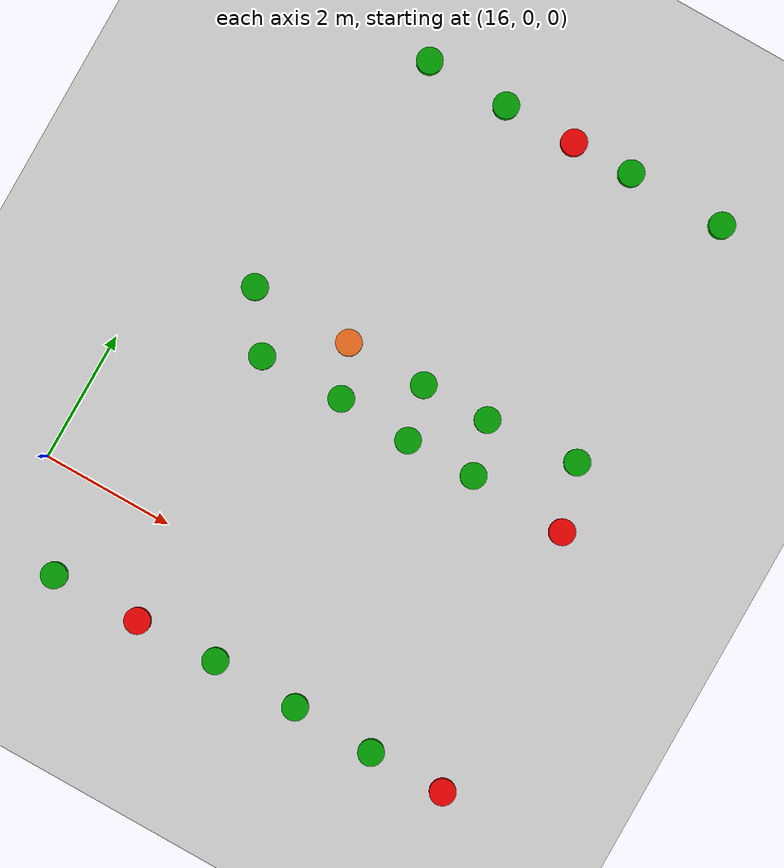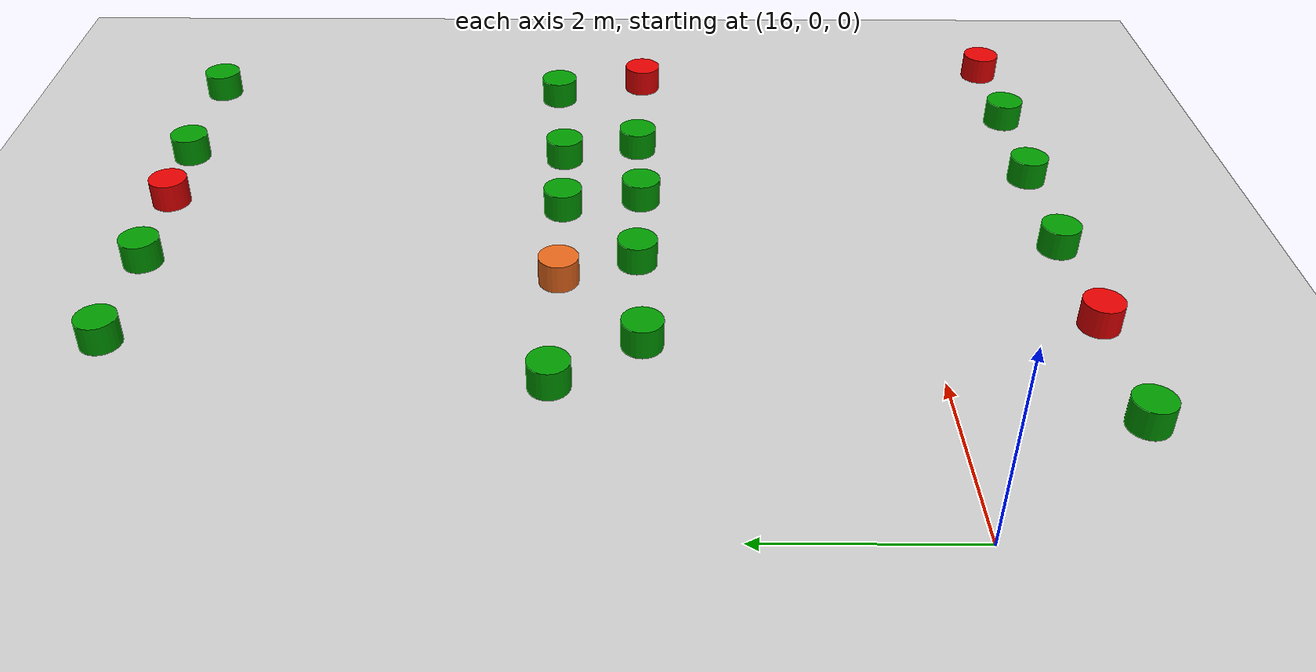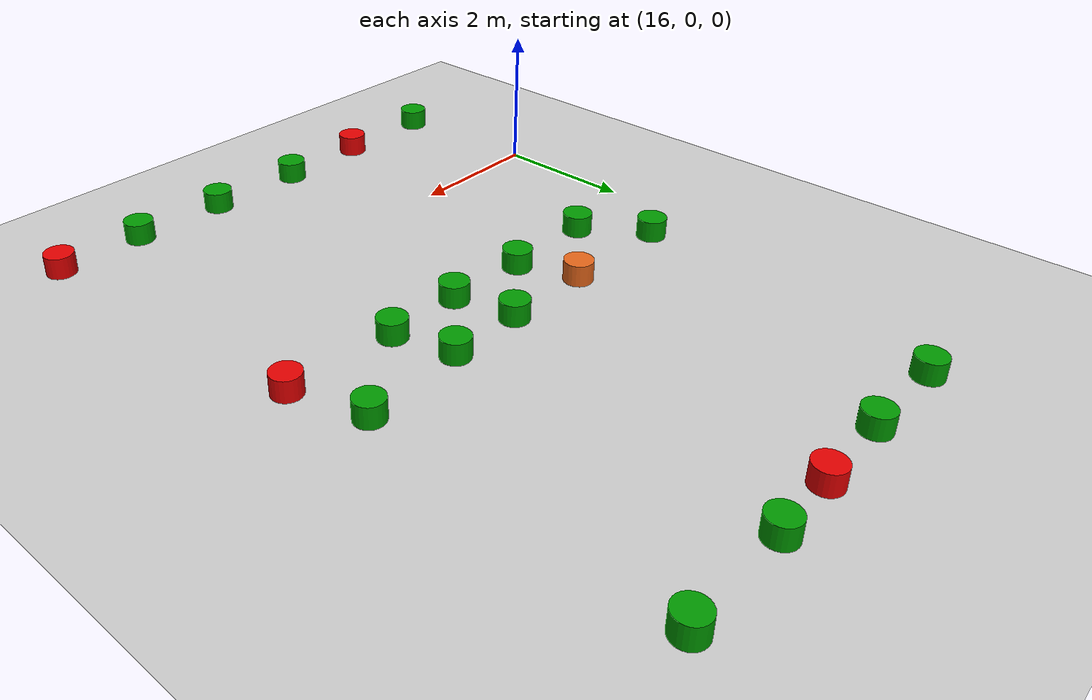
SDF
<sdf version="1.7">
 <world name="default">
  <model name="ground_plane">
   <static>1</static>
   <link name="link">
    <collision name="collision">
     <geometry><plane><normal>0 0 1</normal><size>100 100</size></plane></geometry>
     <surface><friction><ode><mu>100</mu><mu2>50</mu2></ode></friction></surface>
    </collision>
    <visual name="visual">
     <cast_shadows>0</cast_shadows>
     <geometry><plane><normal>0 0 1</normal><size>100 100</size></plane></geometry>
     <material>
      <script><uri>file://media/materials/scripts/gazebo.material</uri><name>Gazebo/Grey</name></script>
     </material>
    </visual>
   </link>
  </model>
  <model name="Test_pot_green_clone_4">
   <link name="link_0">
    <inertial>
     <mass>0.044841</mass>
     <inertia>
      <ixx>0.00074807</ixx>
      <ixy>0</ixy>
      <ixz>0</ixz>
      <iyy>0.00074807</iyy>
      <iyz>0</iyz>
      <izz>0.00086495</izz>
     </inertia>
    </inertial>
    <pose>3e-06 1e-06 0 0 -0 0</pose>
    <visual name="visual">
     <geometry><cylinder><radius>0.196415</radius><length>0.290612</length></cylinder></geometry>
     <material>
      <lighting>1</lighting>
      <script><uri>file://media/materials/scripts/gazebo.material</uri><name>Gazebo/Grey</name></script>
      <shader type="pixel"><normal_map>__default__</normal_map></shader>
      <diffuse>0 0.6 0 0</diffuse>
      <ambient>0.3 0.3 0.3 1</ambient>
      <specular>0.01 0.01 0.01 1</specular>
      <emissive>0 0 0 1</emissive>
     </material>
    </visual>
    <collision name="collision">
     <geometry><cylinder><radius>0.196415</radius><length>0.290612</length></cylinder></geometry>
     <surface>
      <friction>
       <ode><mu>1</mu><mu2>1</mu2><fdir1>0 0 0</fdir1><slip1>0</slip1><slip2>0</slip2></ode>
       <torsional>
        <coefficient>1</coefficient>
        <patch_radius>0</patch_radius>
        <surface_radius>0</surface_radius>
        <use_patch_radius>1</use_patch_radius>
        <ode><slip>0</slip></ode>
       </torsional>
      </friction>
      <bounce><restitution_coefficient>0</restitution_coefficient><threshold>1e+06</threshold></bounce>
      <contact>
       <collide_without_contact>0</collide_without_contact>
       <collide_without_contact_bitmask>1</collide_without_contact_bitmask>
       <collide_bitmask>1</collide_bitmask>
       <ode>
        <soft_cfm>0</soft_cfm>
        <soft_erp>0.2</soft_erp>
        <kp>1e+13</kp>
        <kd>1</kd>
        <max_vel>0.01</max_vel>
        <min_depth>0</min_depth>
       </ode>
       <bullet>
        <split_impulse>1</split_impulse>
        <split_impulse_penetration_threshold>-0.01</split_impulse_penetration_threshold>
        <soft_cfm>0</soft_cfm>
        <soft_erp>0.2</soft_erp>
        <kp>1e+13</kp>
        <kd>1</kd>
       </bullet>
      </contact>
     </surface>
    </collision>
   </link>
   <static>0</static>
   <pose>18.0132 7.68148 0.575581 0 3e-06 0.002291</pose>
  </model>
  <model name="Test_pot_green_clone_5">
   <link name="link_0">
    <inertial>
     <mass>0.044841</mass>
     <inertia>
      <ixx>0.00074807</ixx>
      <ixy>0</ixy>
      <ixz>0</ixz>
      <iyy>0.00074807</iyy>
      <iyz>0</iyz>
      <izz>0.00086495</izz>
     </inertia>
    </inertial>
    <pose>3e-06 1e-06 0 0 -0 0</pose>
    <visual name="visual">
     <geometry><cylinder><radius>0.196415</radius><length>0.290612</length></cylinder></geometry>
     <material>
      <lighting>1</lighting>
      <script><uri>file://media/materials/scripts/gazebo.material</uri><name>Gazebo/Grey</name></script>
      <shader type="pixel"><normal_map>__default__</normal_map></shader>
      <diffuse>0 0.6 0 0</diffuse>
      <ambient>0.3 0.3 0.3 1</ambient>
      <specular>0.01 0.01 0.01 1</specular>
      <emissive>0 0 0 1</emissive>
     </material>
    </visual>
    <collision name="collision">
     <geometry><cylinder><radius>0.196415</radius><length>0.290612</length></cylinder></geometry>
     <surface>
      <friction>
       <ode><mu>1</mu><mu2>1</mu2><fdir1>0 0 0</fdir1><slip1>0</slip1><slip2>0</slip2></ode>
       <torsional>
        <coefficient>1</coefficient>
        <patch_radius>0</patch_radius>
        <surface_radius>0</surface_radius>
        <use_patch_radius>1</use_patch_radius>
        <ode><slip>0</slip></ode>
       </torsional>
      </friction>
      <bounce><restitution_coefficient>0</restitution_coefficient><threshold>1e+06</threshold></bounce>
      <contact>
       <collide_without_contact>0</collide_without_contact>
       <collide_without_contact_bitmask>1</collide_without_contact_bitmask>
       <collide_bitmask>1</collide_bitmask>
       <ode>
        <soft_cfm>0</soft_cfm>
        <soft_erp>0.2</soft_erp>
        <kp>1e+13</kp>
        <kd>1</kd>
        <max_vel>0.01</max_vel>
        <min_depth>0</min_depth>
       </ode>
       <bullet>
        <split_impulse>1</split_impulse>
        <split_impulse_penetration_threshold>-0.01</split_impulse_penetration_threshold>
        <soft_cfm>0</soft_cfm>
        <soft_erp>0.2</soft_erp>
        <kp>1e+13</kp>
        <kd>1</kd>
       </bullet>
      </contact>
     </surface>
    </collision>
   </link>
   <static>0</static>
   <pose>19.2874 7.66309 0.575572 1.1e-05 -1e-06 0.001082</pose>
  </model>
  <model name="Test_pot_green_clone_6">
   <link name="link_0">
    <inertial>
     <mass>0.044841</mass>
     <inertia>
      <ixx>0.00074807</ixx>
      <ixy>0</ixy>
      <ixz>0</ixz>
      <iyy>0.00074807</iyy>
      <iyz>0</iyz>
      <izz>0.00086495</izz>
     </inertia>
    </inertial>
    <pose>3e-06 1e-06 0 0 -0 0</pose>
    <visual name="visual">
     <geometry><cylinder><radius>0.196415</radius><length>0.290612</length></cylinder></geometry>
     <material>
      <lighting>1</lighting>
      <script><uri>file://media/materials/scripts/gazebo.material</uri><name>Gazebo/Grey</name></script>
      <shader type="pixel"><normal_map>__default__</normal_map></shader>
      <diffuse>0 0.6 0 0</diffuse>
      <ambient>0.3 0.3 0.3 1</ambient>
      <specular>0.01 0.01 0.01 1</specular>
      <emissive>0 0 0 1</emissive>
     </material>
    </visual>
    <collision name="collision">
     <geometry><cylinder><radius>0.196415</radius><length>0.290612</length></cylinder></geometry>
     <surface>
      <friction>
       <ode><mu>1</mu><mu2>1</mu2><fdir1>0 0 0</fdir1><slip1>0</slip1><slip2>0</slip2></ode>
       <torsional>
        <coefficient>1</coefficient>
        <patch_radius>0</patch_radius>
        <surface_radius>0</surface_radius>
        <use_patch_radius>1</use_patch_radius>
        <ode><slip>0</slip></ode>
       </torsional>
      </friction>
      <bounce><restitution_coefficient>0</restitution_coefficient><threshold>1e+06</threshold></bounce>
      <contact>
       <collide_without_contact>0</collide_without_contact>
       <collide_without_contact_bitmask>1</collide_without_contact_bitmask>
       <collide_bitmask>1</collide_bitmask>
       <ode>
        <soft_cfm>0</soft_cfm>
        <soft_erp>0.2</soft_erp>
        <kp>1e+13</kp>
        <kd>1</kd>
        <max_vel>0.01</max_vel>
        <min_depth>0</min_depth>
       </ode>
       <bullet>
        <split_impulse>1</split_impulse>
        <split_impulse_penetration_threshold>-0.01</split_impulse_penetration_threshold>
        <soft_cfm>0</soft_cfm>
        <soft_erp>0.2</soft_erp>
        <kp>1e+13</kp>
        <kd>1</kd>
       </bullet>
      </contact>
     </surface>
    </collision>
   </link>
   <static>0</static>
   <pose>21.3341 7.70057 0.57559 -3.4e-05 -2e-06 0.000809</pose>
  </model>
  <model name="Test_pot_green_clone_7">
   <link name="link_0">
    <inertial>
     <mass>0.044841</mass>
     <inertia>
      <ixx>0.00074807</ixx>
      <ixy>0</ixy>
      <ixz>0</ixz>
      <iyy>0.00074807</iyy>
      <iyz>0</iyz>
      <izz>0.00086495</izz>
     </inertia>
    </inertial>
    <pose>3e-06 1e-06 0 0 -0 0</pose>
    <visual name="visual">
     <geometry><cylinder><radius>0.196415</radius><length>0.290612</length></cylinder></geometry>
     <material>
      <lighting>1</lighting>
      <script><uri>file://media/materials/scripts/gazebo.material</uri><name>Gazebo/Grey</name></script>
      <shader type="pixel"><normal_map>__default__</normal_map></shader>
      <diffuse>0 0.6 0 0</diffuse>
      <ambient>0.3 0.3 0.3 1</ambient>
      <specular>0.01 0.01 0.01 1</specular>
      <emissive>0 0 0 1</emissive>
     </material>
    </visual>
    <collision name="collision">
     <geometry><cylinder><radius>0.196415</radius><length>0.290612</length></cylinder></geometry>
     <surface>
      <friction>
       <ode><mu>1</mu><mu2>1</mu2><fdir1>0 0 0</fdir1><slip1>0</slip1><slip2>0</slip2></ode>
       <torsional>
        <coefficient>1</coefficient>
        <patch_radius>0</patch_radius>
        <surface_radius>0</surface_radius>
        <use_patch_radius>1</use_patch_radius>
        <ode><slip>0</slip></ode>
       </torsional>
      </friction>
      <bounce><restitution_coefficient>0</restitution_coefficient><threshold>1e+06</threshold></bounce>
      <contact>
       <collide_without_contact>0</collide_without_contact>
       <collide_without_contact_bitmask>1</collide_without_contact_bitmask>
       <collide_bitmask>1</collide_bitmask>
       <ode>
        <soft_cfm>0</soft_cfm>
        <soft_erp>0.2</soft_erp>
        <kp>1e+13</kp>
        <kd>1</kd>
        <max_vel>0.01</max_vel>
        <min_depth>0</min_depth>
       </ode>
       <bullet>
        <split_impulse>1</split_impulse>
        <split_impulse_penetration_threshold>-0.01</split_impulse_penetration_threshold>
        <soft_cfm>0</soft_cfm>
        <soft_erp>0.2</soft_erp>
        <kp>1e+13</kp>
        <kd>1</kd>
       </bullet>
      </contact>
     </surface>
    </collision>
   </link>
   <static>0</static>
   <pose>22.8379 7.69095 0.575568 3.2e-05 -1e-06 0.003549</pose>
  </model>
  <model name="Test_pot_orange_clone_3">
   <link name="link_0">
    <inertial>
     <mass>0.044841</mass>
     <inertia>
      <ixx>0.00074807</ixx>
      <ixy>0</ixy>
      <ixz>0</ixz>
      <iyy>0.00074807</iyy>
      <iyz>0</iyz>
      <izz>0.00086495</izz>
     </inertia>
    </inertial>
    <pose>3e-06 1e-06 -0 0 -0 0</pose>
    <visual name="visual">
     <geometry><cylinder><radius>0.196415</radius><length>0.290612</length></cylinder></geometry>
     <material>
      <lighting>1</lighting>
      <script><uri>file://media/materials/scripts/gazebo.material</uri><name>Gazebo/Grey</name></script>
      <shader type="pixel"><normal_map>__default__</normal_map></shader>
      <ambient>0.3 0.3 0.3 1</ambient>
      <diffuse>0.9 0.4 0.1 1</diffuse>
      <specular>0.01 0.01 0.01 1</specular>
      <emissive>0 0 0 1</emissive>
     </material>
    </visual>
    <collision name="collision">
     <geometry><cylinder><radius>0.196415</radius><length>0.290612</length></cylinder></geometry>
     <surface>
      <friction>
       <ode><mu>1</mu><mu2>1</mu2><fdir1>0 0 0</fdir1><slip1>0</slip1><slip2>0</slip2></ode>
       <torsional>
        <coefficient>1</coefficient>
        <patch_radius>0</patch_radius>
        <surface_radius>0</surface_radius>
        <use_patch_radius>1</use_patch_radius>
        <ode><slip>0</slip></ode>
       </torsional>
      </friction>
      <bounce><restitution_coefficient>0</restitution_coefficient><threshold>1e+06</threshold></bounce>
      <contact>
       <collide_without_contact>0</collide_without_contact>
       <collide_without_contact_bitmask>1</collide_without_contact_bitmask>
       <collide_bitmask>1</collide_bitmask>
       <ode>
        <soft_cfm>0</soft_cfm>
        <soft_erp>0.2</soft_erp>
        <kp>1e+13</kp>
        <kd>1</kd>
        <max_vel>0.01</max_vel>
        <min_depth>0</min_depth>
       </ode>
       <bullet>
        <split_impulse>1</split_impulse>
        <split_impulse_penetration_threshold>-0.01</split_impulse_penetration_threshold>
        <soft_cfm>0</soft_cfm>
        <soft_erp>0.2</soft_erp>
        <kp>1e+13</kp>
        <kd>1</kd>
       </bullet>
      </contact>
     </surface>
    </collision>
   </link>
   <static>0</static>
   <pose>18.9979 3.57992 0.575584 1.1e-05 -2e-06 0.000138</pose>
  </model>
  <model name="Test_pot_red_clone_0">
   <link name="link_0">
    <inertial>
     <mass>0.044841</mass>
     <inertia>
      <ixx>0.00074807</ixx>
      <ixy>0</ixy>
      <ixz>0</ixz>
      <iyy>0.00074807</iyy>
      <iyz>0</iyz>
      <izz>0.00086495</izz>
     </inertia>
    </inertial>
    <pose>3e-06 1e-06 -0 0 -0 0</pose>
    <visual name="visual">
     <geometry><cylinder><radius>0.196415</radius><length>0.290612</length></cylinder></geometry>
     <material>
      <lighting>1</lighting>
      <script><uri>file://media/materials/scripts/gazebo.material</uri><name>Gazebo/Grey</name></script>
      <shader type="pixel"><normal_map>__default__</normal_map></shader>
      <ambient>0.3 0.3 0.3 1</ambient>
      <diffuse>0.9 0 0 1</diffuse>
      <specular>0.01 0.01 0.01 1</specular>
      <emissive>0 0 0 1</emissive>
     </material>
    </visual>
    <collision name="collision">
     <geometry><cylinder><radius>0.196415</radius><length>0.290612</length></cylinder></geometry>
     <surface>
      <friction>
       <ode><mu>1</mu><mu2>1</mu2><fdir1>0 0 0</fdir1><slip1>0</slip1><slip2>0</slip2></ode>
       <torsional>
        <coefficient>1</coefficient>
        <patch_radius>0</patch_radius>
        <surface_radius>0</surface_radius>
        <use_patch_radius>1</use_patch_radius>
        <ode><slip>0</slip></ode>
       </torsional>
      </friction>
      <bounce><restitution_coefficient>0</restitution_coefficient><threshold>1e+06</threshold></bounce>
      <contact>
       <collide_without_contact>0</collide_without_contact>
       <collide_without_contact_bitmask>1</collide_without_contact_bitmask>
       <collide_bitmask>1</collide_bitmask>
       <ode>
        <soft_cfm>0</soft_cfm>
        <soft_erp>0.2</soft_erp>
        <kp>1e+13</kp>
        <kd>1</kd>
        <max_vel>0.01</max_vel>
        <min_depth>0</min_depth>
       </ode>
       <bullet>
        <split_impulse>1</split_impulse>
        <split_impulse_penetration_threshold>-0.01</split_impulse_penetration_threshold>
        <soft_cfm>0</soft_cfm>
        <soft_erp>0.2</soft_erp>
        <kp>1e+13</kp>
        <kd>1</kd>
       </bullet>
      </contact>
     </surface>
    </collision>
   </link>
   <static>0</static>
   <pose>20.4002 7.68031 0.575565 1.9e-05 3e-06 -0.000519</pose>
  </model>
  <model name="Test_pot_red_clone_3">
   <link name="link_0">
    <inertial>
     <mass>0.044841</mass>
     <inertia>
      <ixx>0.00074807</ixx>
      <ixy>0</ixy>
      <ixz>0</ixz>
      <iyy>0.00074807</iyy>
      <iyz>0</iyz>
      <izz>0.00086495</izz>
     </inertia>
    </inertial>
    <pose>3e-06 1e-06 -0 0 -0 0</pose>
    <visual name="visual">
     <geometry><cylinder><radius>0.196415</radius><length>0.290612</length></cylinder></geometry>
     <material>
      <lighting>1</lighting>
      <script><uri>file://media/materials/scripts/gazebo.material</uri><name>Gazebo/Grey</name></script>
      <shader type="pixel"><normal_map>__default__</normal_map></shader>
      <ambient>0.3 0.3 0.3 1</ambient>
      <diffuse>0.9 0 0 1</diffuse>
      <specular>0.01 0.01 0.01 1</specular>
      <emissive>0 0 0 1</emissive>
     </material>
    </visual>
    <collision name="collision">
     <geometry><cylinder><radius>0.196415</radius><length>0.290612</length></cylinder></geometry>
     <surface>
      <friction>
       <ode><mu>1</mu><mu2>1</mu2><fdir1>0 0 0</fdir1><slip1>0</slip1><slip2>0</slip2></ode>
       <torsional>
        <coefficient>1</coefficient>
        <patch_radius>0</patch_radius>
        <surface_radius>0</surface_radius>
        <use_patch_radius>1</use_patch_radius>
        <ode><slip>0</slip></ode>
       </torsional>
      </friction>
      <bounce><restitution_coefficient>0</restitution_coefficient><threshold>1e+06</threshold></bounce>
      <contact>
       <collide_without_contact>0</collide_without_contact>
       <collide_without_contact_bitmask>1</collide_without_contact_bitmask>
       <collide_bitmask>1</collide_bitmask>
       <ode>
        <soft_cfm>0</soft_cfm>
        <soft_erp>0.2</soft_erp>
        <kp>1e+13</kp>
        <kd>1</kd>
        <max_vel>0.01</max_vel>
        <min_depth>0</min_depth>
       </ode>
       <bullet>
        <split_impulse>1</split_impulse>
        <split_impulse_penetration_threshold>-0.01</split_impulse_penetration_threshold>
        <soft_cfm>0</soft_cfm>
        <soft_erp>0.2</soft_erp>
        <kp>1e+13</kp>
        <kd>1</kd>
       </bullet>
      </contact>
     </surface>
    </collision>
   </link>
   <static>0</static>
   <pose>23.0115 2.71932 0.575587 -1e-06 -4e-06 0.00012</pose>
  </model>
  <model name="Test_pot_red_clone_6">
   <link name="link_0">
    <inertial>
     <mass>0.044841</mass>
     <inertia>
      <ixx>0.00074807</ixx>
      <ixy>0</ixy>
      <ixz>0</ixz>
      <iyy>0.00074807</iyy>
      <iyz>0</iyz>
      <izz>0.00086495</izz>
     </inertia>
    </inertial>
    <pose>3e-06 1e-06 -0 0 -0 0</pose>
    <visual name="visual">
     <geometry><cylinder><radius>0.196415</radius><length>0.290612</length></cylinder></geometry>
     <material>
      <lighting>1</lighting>
      <script><uri>file://media/materials/scripts/gazebo.material</uri><name>Gazebo/Grey</name></script>
      <shader type="pixel"><normal_map>__default__</normal_map></shader>
      <ambient>0.3 0.3 0.3 1</ambient>
      <diffuse>0.9 0 0 1</diffuse>
      <specular>0.01 0.01 0.01 1</specular>
      <emissive>0 0 0 1</emissive>
     </material>
    </visual>
    <collision name="collision">
     <geometry><cylinder><radius>0.196415</radius><length>0.290612</length></cylinder></geometry>
     <surface>
      <friction>
       <ode><mu>1</mu><mu2>1</mu2><fdir1>0 0 0</fdir1><slip1>0</slip1><slip2>0</slip2></ode>
       <torsional>
        <coefficient>1</coefficient>
        <patch_radius>0</patch_radius>
        <surface_radius>0</surface_radius>
        <use_patch_radius>1</use_patch_radius>
        <ode><slip>0</slip></ode>
       </torsional>
      </friction>
      <bounce><restitution_coefficient>0</restitution_coefficient><threshold>1e+06</threshold></bounce>
      <contact>
       <collide_without_contact>0</collide_without_contact>
       <collide_without_contact_bitmask>1</collide_without_contact_bitmask>
       <collide_bitmask>1</collide_bitmask>
       <ode>
        <soft_cfm>0</soft_cfm>
        <soft_erp>0.2</soft_erp>
        <kp>1e+13</kp>
        <kd>1</kd>
        <max_vel>0.01</max_vel>
        <min_depth>0</min_depth>
       </ode>
       <bullet>
        <split_impulse>1</split_impulse>
        <split_impulse_penetration_threshold>-0.01</split_impulse_penetration_threshold>
        <soft_cfm>0</soft_cfm>
        <soft_erp>0.2</soft_erp>
        <kp>1e+13</kp>
        <kd>1</kd>
       </bullet>
      </contact>
     </surface>
    </collision>
   </link>
   <static>0</static>
   <pose>18.321 -1.40038 0.575597 -6.6e-05 4e-06 0.001376</pose>
  </model>
  <model name="Test_pot_red_clone_7">
   <link name="link_0">
    <inertial>
     <mass>0.044841</mass>
     <inertia>
      <ixx>0.00074807</ixx>
      <ixy>0</ixy>
      <ixz>0</ixz>
      <iyy>0.00074807</iyy>
      <iyz>0</iyz>
      <izz>0.00086495</izz>
     </inertia>
    </inertial>
    <pose>3e-06 1e-06 -0 0 -0 0</pose>
    <visual name="visual">
     <geometry><cylinder><radius>0.196415</radius><length>0.290612</length></cylinder></geometry>
     <material>
      <lighting>1</lighting>
      <script><uri>file://media/materials/scripts/gazebo.material</uri><name>Gazebo/Grey</name></script>
      <shader type="pixel"><normal_map>__default__</normal_map></shader>
      <ambient>0.3 0.3 0.3 1</ambient>
      <diffuse>0.9 0 0 1</diffuse>
      <specular>0.01 0.01 0.01 1</specular>
      <emissive>0 0 0 1</emissive>
     </material>
    </visual>
    <collision name="collision">
     <geometry><cylinder><radius>0.196415</radius><length>0.290612</length></cylinder></geometry>
     <surface>
      <friction>
       <ode><mu>1</mu><mu2>1</mu2><fdir1>0 0 0</fdir1><slip1>0</slip1><slip2>0</slip2></ode>
       <torsional>
        <coefficient>1</coefficient>
        <patch_radius>0</patch_radius>
        <surface_radius>0</surface_radius>
        <use_patch_radius>1</use_patch_radius>
        <ode><slip>0</slip></ode>
       </torsional>
      </friction>
      <bounce><restitution_coefficient>0</restitution_coefficient><threshold>1e+06</threshold></bounce>
      <contact>
       <collide_without_contact>0</collide_without_contact>
       <collide_without_contact_bitmask>1</collide_without_contact_bitmask>
       <collide_bitmask>1</collide_bitmask>
       <ode>
        <soft_cfm>0</soft_cfm>
        <soft_erp>0.2</soft_erp>
        <kp>1e+13</kp>
        <kd>1</kd>
        <max_vel>0.01</max_vel>
        <min_depth>0</min_depth>
       </ode>
       <bullet>
        <split_impulse>1</split_impulse>
        <split_impulse_penetration_threshold>-0.01</split_impulse_penetration_threshold>
        <soft_cfm>0</soft_cfm>
        <soft_erp>0.2</soft_erp>
        <kp>1e+13</kp>
        <kd>1</kd>
       </bullet>
      </contact>
     </surface>
    </collision>
   </link>
   <static>0</static>
   <pose>23.3531 -1.3794 0.575581 4.5e-05 4e-06 -0.001283</pose>
  </model>
  <model name="Test_pot_green_clone_20">
   <link name="link_0">
    <inertial>
     <mass>0.044841</mass>
     <inertia>
      <ixx>0.00074807</ixx>
      <ixy>0</ixy>
      <ixz>0</ixz>
      <iyy>0.00074807</iyy>
      <iyz>0</iyz>
      <izz>0.00086495</izz>
     </inertia>
    </inertial>
    <pose>3e-06 1e-06 0 0 -0 0</pose>
    <visual name="visual">
     <geometry><cylinder><radius>0.196415</radius><length>0.290612</length></cylinder></geometry>
     <material>
      <lighting>1</lighting>
      <script><uri>file://media/materials/scripts/gazebo.material</uri><name>Gazebo/Grey</name></script>
      <shader type="pixel"><normal_map>__default__</normal_map></shader>
      <diffuse>0 0.6 0 0</diffuse>
      <ambient>0.3 0.3 0.3 1</ambient>
      <specular>0.01 0.01 0.01 1</specular>
      <emissive>0 0 0 1</emissive>
     </material>
    </visual>
    <collision name="collision">
     <geometry><cylinder><radius>0.196415</radius><length>0.290612</length></cylinder></geometry>
     <surface>
      <friction>
       <ode><mu>1</mu><mu2>1</mu2><fdir1>0 0 0</fdir1><slip1>0</slip1><slip2>0</slip2></ode>
       <torsional>
        <coefficient>1</coefficient>
        <patch_radius>0</patch_radius>
        <surface_radius>0</surface_radius>
        <use_patch_radius>1</use_patch_radius>
        <ode><slip>0</slip></ode>
       </torsional>
      </friction>
      <bounce><restitution_coefficient>0</restitution_coefficient><threshold>1e+06</threshold></bounce>
      <contact>
       <collide_without_contact>0</collide_without_contact>
       <collide_without_contact_bitmask>1</collide_without_contact_bitmask>
       <collide_bitmask>1</collide_bitmask>
       <ode>
        <soft_cfm>0</soft_cfm>
        <soft_erp>0.2</soft_erp>
        <kp>1e+13</kp>
        <kd>1</kd>
        <max_vel>0.01</max_vel>
        <min_depth>0</min_depth>
       </ode>
       <bullet>
        <split_impulse>1</split_impulse>
        <split_impulse_penetration_threshold>-0.01</split_impulse_penetration_threshold>
        <soft_cfm>0</soft_cfm>
        <soft_erp>0.2</soft_erp>
        <kp>1e+13</kp>
        <kd>1</kd>
       </bullet>
      </contact>
     </surface>
    </collision>
   </link>
   <static>0</static>
   <pose>17.4264 3.61095 0.575481 -7e-06 -0 -0.002361</pose>
  </model>
  <model name="Test_pot_green_clone_21">
   <link name="link_0">
    <inertial>
     <mass>0.044841</mass>
     <inertia>
      <ixx>0.00074807</ixx>
      <ixy>0</ixy>
      <ixz>0</ixz>
      <iyy>0.00074807</iyy>
      <iyz>0</iyz>
      <izz>0.00086495</izz>
     </inertia>
    </inertial>
    <pose>3e-06 1e-06 0 0 -0 0</pose>
    <visual name="visual">
     <geometry><cylinder><radius>0.196415</radius><length>0.290612</length></cylinder></geometry>
     <material>
      <lighting>1</lighting>
      <script><uri>file://media/materials/scripts/gazebo.material</uri><name>Gazebo/Grey</name></script>
      <shader type="pixel"><normal_map>__default__</normal_map></shader>
      <diffuse>0 0.6 0 0</diffuse>
      <ambient>0.3 0.3 0.3 1</ambient>
      <specular>0.01 0.01 0.01 1</specular>
      <emissive>0 0 0 1</emissive>
     </material>
    </visual>
    <collision name="collision">
     <geometry><cylinder><radius>0.196415</radius><length>0.290612</length></cylinder></geometry>
     <surface>
      <friction>
       <ode><mu>1</mu><mu2>1</mu2><fdir1>0 0 0</fdir1><slip1>0</slip1><slip2>0</slip2></ode>
       <torsional>
        <coefficient>1</coefficient>
        <patch_radius>0</patch_radius>
        <surface_radius>0</surface_radius>
        <use_patch_radius>1</use_patch_radius>
        <ode><slip>0</slip></ode>
       </torsional>
      </friction>
      <bounce><restitution_coefficient>0</restitution_coefficient><threshold>1e+06</threshold></bounce>
      <contact>
       <collide_without_contact>0</collide_without_contact>
       <collide_without_contact_bitmask>1</collide_without_contact_bitmask>
       <collide_bitmask>1</collide_bitmask>
       <ode>
        <soft_cfm>0</soft_cfm>
        <soft_erp>0.2</soft_erp>
        <kp>1e+13</kp>
        <kd>1</kd>
        <max_vel>0.01</max_vel>
        <min_depth>0</min_depth>
       </ode>
       <bullet>
        <split_impulse>1</split_impulse>
        <split_impulse_penetration_threshold>-0.01</split_impulse_penetration_threshold>
        <soft_cfm>0</soft_cfm>
        <soft_erp>0.2</soft_erp>
        <kp>1e+13</kp>
        <kd>1</kd>
       </bullet>
      </contact>
     </surface>
    </collision>
   </link>
   <static>0</static>
   <pose>18.0066 2.79543 0.575513 1.6e-05 2e-05 -0.001882</pose>
  </model>
  <model name="Test_pot_green_clone_22">
   <link name="link_0">
    <inertial>
     <mass>0.044841</mass>
     <inertia>
      <ixx>0.00074807</ixx>
      <ixy>0</ixy>
      <ixz>0</ixz>
      <iyy>0.00074807</iyy>
      <iyz>0</iyz>
      <izz>0.00086495</izz>
     </inertia>
    </inertial>
    <pose>3e-06 1e-06 0 0 -0 0</pose>
    <visual name="visual">
     <geometry><cylinder><radius>0.196415</radius><length>0.290612</length></cylinder></geometry>
     <material>
      <lighting>1</lighting>
      <script><uri>file://media/materials/scripts/gazebo.material</uri><name>Gazebo/Grey</name></script>
      <shader type="pixel"><normal_map>__default__</normal_map></shader>
      <diffuse>0 0.6 0 0</diffuse>
      <ambient>0.3 0.3 0.3 1</ambient>
      <specular>0.01 0.01 0.01 1</specular>
      <emissive>0 0 0 1</emissive>
     </material>
    </visual>
    <collision name="collision">
     <geometry><cylinder><radius>0.196415</radius><length>0.290612</length></cylinder></geometry>
     <surface>
      <friction>
       <ode><mu>1</mu><mu2>1</mu2><fdir1>0 0 0</fdir1><slip1>0</slip1><slip2>0</slip2></ode>
       <torsional>
        <coefficient>1</coefficient>
        <patch_radius>0</patch_radius>
        <surface_radius>0</surface_radius>
        <use_patch_radius>1</use_patch_radius>
        <ode><slip>0</slip></ode>
       </torsional>
      </friction>
      <bounce><restitution_coefficient>0</restitution_coefficient><threshold>1e+06</threshold></bounce>
      <contact>
       <collide_without_contact>0</collide_without_contact>
       <collide_without_contact_bitmask>1</collide_without_contact_bitmask>
       <collide_bitmask>1</collide_bitmask>
       <ode>
        <soft_cfm>0</soft_cfm>
        <soft_erp>0.2</soft_erp>
        <kp>1e+13</kp>
        <kd>1</kd>
        <max_vel>0.01</max_vel>
        <min_depth>0</min_depth>
       </ode>
       <bullet>
        <split_impulse>1</split_impulse>
        <split_impulse_penetration_threshold>-0.01</split_impulse_penetration_threshold>
        <soft_cfm>0</soft_cfm>
        <soft_erp>0.2</soft_erp>
        <kp>1e+13</kp>
        <kd>1</kd>
       </bullet>
      </contact>
     </surface>
    </collision>
   </link>
   <static>0</static>
   <pose>19.2997 2.82375 0.575507 -2e-06 1e-06 -0.00221</pose>
  </model>
  <model name="Test_pot_green_clone_23">
   <link name="link_0">
    <inertial>
     <mass>0.044841</mass>
     <inertia>
      <ixx>0.00074807</ixx>
      <ixy>0</ixy>
      <ixz>0</ixz>
      <iyy>0.00074807</iyy>
      <iyz>0</iyz>
      <izz>0.00086495</izz>
     </inertia>
    </inertial>
    <pose>3e-06 1e-06 0 0 -0 0</pose>
    <visual name="visual">
     <geometry><cylinder><radius>0.196415</radius><length>0.290612</length></cylinder></geometry>
     <material>
      <lighting>1</lighting>
      <script><uri>file://media/materials/scripts/gazebo.material</uri><name>Gazebo/Grey</name></script>
      <shader type="pixel"><normal_map>__default__</normal_map></shader>
      <diffuse>0 0.6 0 0</diffuse>
      <ambient>0.3 0.3 0.3 1</ambient>
      <specular>0.01 0.01 0.01 1</specular>
      <emissive>0 0 0 1</emissive>
     </material>
    </visual>
    <collision name="collision">
     <geometry><cylinder><radius>0.196415</radius><length>0.290612</length></cylinder></geometry>
     <surface>
      <friction>
       <ode><mu>1</mu><mu2>1</mu2><fdir1>0 0 0</fdir1><slip1>0</slip1><slip2>0</slip2></ode>
       <torsional>
        <coefficient>1</coefficient>
        <patch_radius>0</patch_radius>
        <surface_radius>0</surface_radius>
        <use_patch_radius>1</use_patch_radius>
        <ode><slip>0</slip></ode>
       </torsional>
      </friction>
      <bounce><restitution_coefficient>0</restitution_coefficient><threshold>1e+06</threshold></bounce>
      <contact>
       <collide_without_contact>0</collide_without_contact>
       <collide_without_contact_bitmask>1</collide_without_contact_bitmask>
       <collide_bitmask>1</collide_bitmask>
       <ode>
        <soft_cfm>0</soft_cfm>
        <soft_erp>0.2</soft_erp>
        <kp>1e+13</kp>
        <kd>1</kd>
        <max_vel>0.01</max_vel>
        <min_depth>0</min_depth>
       </ode>
       <bullet>
        <split_impulse>1</split_impulse>
        <split_impulse_penetration_threshold>-0.01</split_impulse_penetration_threshold>
        <soft_cfm>0</soft_cfm>
        <soft_erp>0.2</soft_erp>
        <kp>1e+13</kp>
        <kd>1</kd>
       </bullet>
      </contact>
     </surface>
    </collision>
   </link>
   <static>0</static>
   <pose>20.2361 3.57867 0.575587 2.4e-05 -0 -0.002331</pose>
  </model>
  <model name="Test_pot_green_clone_24">
   <link name="link_0">
    <inertial>
     <mass>0.044841</mass>
     <inertia>
      <ixx>0.00074807</ixx>
      <ixy>0</ixy>
      <ixz>0</ixz>
      <iyy>0.00074807</iyy>
      <iyz>0</iyz>
      <izz>0.00086495</izz>
     </inertia>
    </inertial>
    <pose>3e-06 1e-06 0 0 -0 0</pose>
    <visual name="visual">
     <geometry><cylinder><radius>0.196415</radius><length>0.290612</length></cylinder></geometry>
     <material>
      <lighting>1</lighting>
      <script><uri>file://media/materials/scripts/gazebo.material</uri><name>Gazebo/Grey</name></script>
      <shader type="pixel"><normal_map>__default__</normal_map></shader>
      <diffuse>0 0.6 0 0</diffuse>
      <ambient>0.3 0.3 0.3 1</ambient>
      <specular>0.01 0.01 0.01 1</specular>
      <emissive>0 0 0 1</emissive>
     </material>
    </visual>
    <collision name="collision">
     <geometry><cylinder><radius>0.196415</radius><length>0.290612</length></cylinder></geometry>
     <surface>
      <friction>
       <ode><mu>1</mu><mu2>1</mu2><fdir1>0 0 0</fdir1><slip1>0</slip1><slip2>0</slip2></ode>
       <torsional>
        <coefficient>1</coefficient>
        <patch_radius>0</patch_radius>
        <surface_radius>0</surface_radius>
        <use_patch_radius>1</use_patch_radius>
        <ode><slip>0</slip></ode>
       </torsional>
      </friction>
      <bounce><restitution_coefficient>0</restitution_coefficient><threshold>1e+06</threshold></bounce>
      <contact>
       <collide_without_contact>0</collide_without_contact>
       <collide_without_contact_bitmask>1</collide_without_contact_bitmask>
       <collide_bitmask>1</collide_bitmask>
       <ode>
        <soft_cfm>0</soft_cfm>
        <soft_erp>0.2</soft_erp>
        <kp>1e+13</kp>
        <kd>1</kd>
        <max_vel>0.01</max_vel>
        <min_depth>0</min_depth>
       </ode>
       <bullet>
        <split_impulse>1</split_impulse>
        <split_impulse_penetration_threshold>-0.01</split_impulse_penetration_threshold>
        <soft_cfm>0</soft_cfm>
        <soft_erp>0.2</soft_erp>
        <kp>1e+13</kp>
        <kd>1</kd>
       </bullet>
      </contact>
     </surface>
    </collision>
   </link>
   <static>0</static>
   <pose>20.4313 2.77357 0.575573 -1.5e-05 -2e-05 -0.003274</pose>
  </model>
  <model name="Test_pot_green_clone_25">
   <link name="link_0">
    <inertial>
     <mass>0.044841</mass>
     <inertia>
      <ixx>0.00074807</ixx>
      <ixy>0</ixy>
      <ixz>0</ixz>
      <iyy>0.00074807</iyy>
      <iyz>0</iyz>
      <izz>0.00086495</izz>
     </inertia>
    </inertial>
    <pose>3e-06 1e-06 0 0 -0 0</pose>
    <visual name="visual">
     <geometry><cylinder><radius>0.196415</radius><length>0.290612</length></cylinder></geometry>
     <material>
      <lighting>1</lighting>
      <script><uri>file://media/materials/scripts/gazebo.material</uri><name>Gazebo/Grey</name></script>
      <shader type="pixel"><normal_map>__default__</normal_map></shader>
      <diffuse>0 0.6 0 0</diffuse>
      <ambient>0.3 0.3 0.3 1</ambient>
      <specular>0.01 0.01 0.01 1</specular>
      <emissive>0 0 0 1</emissive>
     </material>
    </visual>
    <collision name="collision">
     <geometry><cylinder><radius>0.196415</radius><length>0.290612</length></cylinder></geometry>
     <surface>
      <friction>
       <ode><mu>1</mu><mu2>1</mu2><fdir1>0 0 0</fdir1><slip1>0</slip1><slip2>0</slip2></ode>
       <torsional>
        <coefficient>1</coefficient>
        <patch_radius>0</patch_radius>
        <surface_radius>0</surface_radius>
        <use_patch_radius>1</use_patch_radius>
        <ode><slip>0</slip></ode>
       </torsional>
      </friction>
      <bounce><restitution_coefficient>0</restitution_coefficient><threshold>1e+06</threshold></bounce>
      <contact>
       <collide_without_contact>0</collide_without_contact>
       <collide_without_contact_bitmask>1</collide_without_contact_bitmask>
       <collide_bitmask>1</collide_bitmask>
       <ode>
        <soft_cfm>0</soft_cfm>
        <soft_erp>0.2</soft_erp>
        <kp>1e+13</kp>
        <kd>1</kd>
        <max_vel>0.01</max_vel>
        <min_depth>0</min_depth>
       </ode>
       <bullet>
        <split_impulse>1</split_impulse>
        <split_impulse_penetration_threshold>-0.01</split_impulse_penetration_threshold>
        <soft_cfm>0</soft_cfm>
        <soft_erp>0.2</soft_erp>
        <kp>1e+13</kp>
        <kd>1</kd>
       </bullet>
      </contact>
     </surface>
    </collision>
   </link>
   <static>0</static>
   <pose>21.5011 2.79481 0.575507 1e-06 4e-06 -0.001563</pose>
  </model>
  <model name="Test_pot_green_clone_26">
   <link name="link_0">
    <inertial>
     <mass>0.044841</mass>
     <inertia>
      <ixx>0.00074807</ixx>
      <ixy>0</ixy>
      <ixz>0</ixz>
      <iyy>0.00074807</iyy>
      <iyz>0</iyz>
      <izz>0.00086495</izz>
     </inertia>
    </inertial>
    <pose>3e-06 1e-06 0 0 -0 0</pose>
    <visual name="visual">
     <geometry><cylinder><radius>0.196415</radius><length>0.290612</length></cylinder></geometry>
     <material>
      <lighting>1</lighting>
      <script><uri>file://media/materials/scripts/gazebo.material</uri><name>Gazebo/Grey</name></script>
      <shader type="pixel"><normal_map>__default__</normal_map></shader>
      <diffuse>0 0.6 0 0</diffuse>
      <ambient>0.3 0.3 0.3 1</ambient>
      <specular>0.01 0.01 0.01 1</specular>
      <emissive>0 0 0 1</emissive>
     </material>
    </visual>
    <collision name="collision">
     <geometry><cylinder><radius>0.196415</radius><length>0.290612</length></cylinder></geometry>
     <surface>
      <friction>
       <ode><mu>1</mu><mu2>1</mu2><fdir1>0 0 0</fdir1><slip1>0</slip1><slip2>0</slip2></ode>
       <torsional>
        <coefficient>1</coefficient>
        <patch_radius>0</patch_radius>
        <surface_radius>0</surface_radius>
        <use_patch_radius>1</use_patch_radius>
        <ode><slip>0</slip></ode>
       </torsional>
      </friction>
      <bounce><restitution_coefficient>0</restitution_coefficient><threshold>1e+06</threshold></bounce>
      <contact>
       <collide_without_contact>0</collide_without_contact>
       <collide_without_contact_bitmask>1</collide_without_contact_bitmask>
       <collide_bitmask>1</collide_bitmask>
       <ode>
        <soft_cfm>0</soft_cfm>
        <soft_erp>0.2</soft_erp>
        <kp>1e+13</kp>
        <kd>1</kd>
        <max_vel>0.01</max_vel>
        <min_depth>0</min_depth>
       </ode>
       <bullet>
        <split_impulse>1</split_impulse>
        <split_impulse_penetration_threshold>-0.01</split_impulse_penetration_threshold>
        <soft_cfm>0</soft_cfm>
        <soft_erp>0.2</soft_erp>
        <kp>1e+13</kp>
        <kd>1</kd>
       </bullet>
      </contact>
     </surface>
    </collision>
   </link>
   <static>0</static>
   <pose>21.2803 3.59391 0.575585 1.6e-05 -1e-06 -0.002947</pose>
  </model>
  <model name="Test_pot_green_clone_27">
   <link name="link_0">
    <inertial>
     <mass>0.044841</mass>
     <inertia>
      <ixx>0.00074807</ixx>
      <ixy>0</ixy>
      <ixz>0</ixz>
      <iyy>0.00074807</iyy>
      <iyz>0</iyz>
      <izz>0.00086495</izz>
     </inertia>
    </inertial>
    <pose>3e-06 1e-06 0 0 -0 0</pose>
    <visual name="visual">
     <geometry><cylinder><radius>0.196415</radius><length>0.290612</length></cylinder></geometry>
     <material>
      <lighting>1</lighting>
      <script><uri>file://media/materials/scripts/gazebo.material</uri><name>Gazebo/Grey</name></script>
      <shader type="pixel"><normal_map>__default__</normal_map></shader>
      <diffuse>0 0.6 0 0</diffuse>
      <ambient>0.3 0.3 0.3 1</ambient>
      <specular>0.01 0.01 0.01 1</specular>
      <emissive>0 0 0 1</emissive>
     </material>
    </visual>
    <collision name="collision">
     <geometry><cylinder><radius>0.196415</radius><length>0.290612</length></cylinder></geometry>
     <surface>
      <friction>
       <ode><mu>1</mu><mu2>1</mu2><fdir1>0 0 0</fdir1><slip1>0</slip1><slip2>0</slip2></ode>
       <torsional>
        <coefficient>1</coefficient>
        <patch_radius>0</patch_radius>
        <surface_radius>0</surface_radius>
        <use_patch_radius>1</use_patch_radius>
        <ode><slip>0</slip></ode>
       </torsional>
      </friction>
      <bounce><restitution_coefficient>0</restitution_coefficient><threshold>1e+06</threshold></bounce>
      <contact>
       <collide_without_contact>0</collide_without_contact>
       <collide_without_contact_bitmask>1</collide_without_contact_bitmask>
       <collide_bitmask>1</collide_bitmask>
       <ode>
        <soft_cfm>0</soft_cfm>
        <soft_erp>0.2</soft_erp>
        <kp>1e+13</kp>
        <kd>1</kd>
        <max_vel>0.01</max_vel>
        <min_depth>0</min_depth>
       </ode>
       <bullet>
        <split_impulse>1</split_impulse>
        <split_impulse_penetration_threshold>-0.01</split_impulse_penetration_threshold>
        <soft_cfm>0</soft_cfm>
        <soft_erp>0.2</soft_erp>
        <kp>1e+13</kp>
        <kd>1</kd>
       </bullet>
      </contact>
     </surface>
    </collision>
   </link>
   <static>0</static>
   <pose>22.7049 3.69722 0.571818 -0.000137 3.6e-05 -0.002922</pose>
  </model>
  <model name="Test_pot_green_clone_34">
   <link name="link_0">
    <inertial>
     <mass>0.044841</mass>
     <inertia>
      <ixx>0.00074807</ixx>
      <ixy>0</ixy>
      <ixz>0</ixz>
      <iyy>0.00074807</iyy>
      <iyz>0</iyz>
      <izz>0.00086495</izz>
     </inertia>
    </inertial>
    <pose>3e-06 1e-06 0 0 -0 0</pose>
    <visual name="visual">
     <geometry><cylinder><radius>0.196415</radius><length>0.290612</length></cylinder></geometry>
     <material>
      <lighting>1</lighting>
      <script><uri>file://media/materials/scripts/gazebo.material</uri><name>Gazebo/Grey</name></script>
      <shader type="pixel"><normal_map>__default__</normal_map></shader>
      <diffuse>0 0.6 0 0</diffuse>
      <ambient>0.3 0.3 0.3 1</ambient>
      <specular>0.01 0.01 0.01 1</specular>
      <emissive>0 0 0 1</emissive>
     </material>
    </visual>
    <collision name="collision">
     <geometry><cylinder><radius>0.196415</radius><length>0.290612</length></cylinder></geometry>
     <surface>
      <friction>
       <ode><mu>1</mu><mu2>1</mu2><fdir1>0 0 0</fdir1><slip1>0</slip1><slip2>0</slip2></ode>
       <torsional>
        <coefficient>1</coefficient>
        <patch_radius>0</patch_radius>
        <surface_radius>0</surface_radius>
        <use_patch_radius>1</use_patch_radius>
        <ode><slip>0</slip></ode>
       </torsional>
      </friction>
      <bounce><restitution_coefficient>0</restitution_coefficient><threshold>1e+06</threshold></bounce>
      <contact>
       <collide_without_contact>0</collide_without_contact>
       <collide_without_contact_bitmask>1</collide_without_contact_bitmask>
       <collide_bitmask>1</collide_bitmask>
       <ode>
        <soft_cfm>0</soft_cfm>
        <soft_erp>0.2</soft_erp>
        <kp>1e+13</kp>
        <kd>1</kd>
        <max_vel>0.01</max_vel>
        <min_depth>0</min_depth>
       </ode>
       <bullet>
        <split_impulse>1</split_impulse>
        <split_impulse_penetration_threshold>-0.01</split_impulse_penetration_threshold>
        <soft_cfm>0</soft_cfm>
        <soft_erp>0.2</soft_erp>
        <kp>1e+13</kp>
        <kd>1</kd>
       </bullet>
      </contact>
     </surface>
    </collision>
   </link>
   <static>0</static>
   <pose>16.9555 -1.41898 0.575584 -2.4e-05 3e-06 -0.003022</pose>
  </model>
  <model name="Test_pot_green_clone_35">
   <link name="link_0">
    <inertial>
     <mass>0.044841</mass>
     <inertia>
      <ixx>0.00074807</ixx>
      <ixy>0</ixy>
      <ixz>0</ixz>
      <iyy>0.00074807</iyy>
      <iyz>0</iyz>
      <izz>0.00086495</izz>
     </inertia>
    </inertial>
    <pose>3e-06 1e-06 0 0 -0 0</pose>
    <visual name="visual">
     <geometry><cylinder><radius>0.196415</radius><length>0.290612</length></cylinder></geometry>
     <material>
      <lighting>1</lighting>
      <script><uri>file://media/materials/scripts/gazebo.material</uri><name>Gazebo/Grey</name></script>
      <shader type="pixel"><normal_map>__default__</normal_map></shader>
      <diffuse>0 0.6 0 0</diffuse>
      <ambient>0.3 0.3 0.3 1</ambient>
      <specular>0.01 0.01 0.01 1</specular>
      <emissive>0 0 0 1</emissive>
     </material>
    </visual>
    <collision name="collision">
     <geometry><cylinder><radius>0.196415</radius><length>0.290612</length></cylinder></geometry>
     <surface>
      <friction>
       <ode><mu>1</mu><mu2>1</mu2><fdir1>0 0 0</fdir1><slip1>0</slip1><slip2>0</slip2></ode>
       <torsional>
        <coefficient>1</coefficient>
        <patch_radius>0</patch_radius>
        <surface_radius>0</surface_radius>
        <use_patch_radius>1</use_patch_radius>
        <ode><slip>0</slip></ode>
       </torsional>
      </friction>
      <bounce><restitution_coefficient>0</restitution_coefficient><threshold>1e+06</threshold></bounce>
      <contact>
       <collide_without_contact>0</collide_without_contact>
       <collide_without_contact_bitmask>1</collide_without_contact_bitmask>
       <collide_bitmask>1</collide_bitmask>
       <ode>
        <soft_cfm>0</soft_cfm>
        <soft_erp>0.2</soft_erp>
        <kp>1e+13</kp>
        <kd>1</kd>
        <max_vel>0.01</max_vel>
        <min_depth>0</min_depth>
       </ode>
       <bullet>
        <split_impulse>1</split_impulse>
        <split_impulse_penetration_threshold>-0.01</split_impulse_penetration_threshold>
        <soft_cfm>0</soft_cfm>
        <soft_erp>0.2</soft_erp>
        <kp>1e+13</kp>
        <kd>1</kd>
       </bullet>
      </contact>
     </surface>
    </collision>
   </link>
   <static>0</static>
   <pose>19.5807 -1.35009 0.575581 -3.7e-05 -5e-06 -0.002899</pose>
  </model>
  <model name="Test_pot_green_clone_36">
   <link name="link_0">
    <inertial>
     <mass>0.044841</mass>
     <inertia>
      <ixx>0.00074807</ixx>
      <ixy>0</ixy>
      <ixz>0</ixz>
      <iyy>0.00074807</iyy>
      <iyz>0</iyz>
      <izz>0.00086495</izz>
     </inertia>
    </inertial>
    <pose>3e-06 1e-06 0 0 -0 0</pose>
    <visual name="visual">
     <geometry><cylinder><radius>0.196415</radius><length>0.290612</length></cylinder></geometry>
     <material>
      <lighting>1</lighting>
      <script><uri>file://media/materials/scripts/gazebo.material</uri><name>Gazebo/Grey</name></script>
      <shader type="pixel"><normal_map>__default__</normal_map></shader>
      <diffuse>0 0.6 0 0</diffuse>
      <ambient>0.3 0.3 0.3 1</ambient>
      <specular>0.01 0.01 0.01 1</specular>
      <emissive>0 0 0 1</emissive>
     </material>
    </visual>
    <collision name="collision">
     <geometry><cylinder><radius>0.196415</radius><length>0.290612</length></cylinder></geometry>
     <surface>
      <friction>
       <ode><mu>1</mu><mu2>1</mu2><fdir1>0 0 0</fdir1><slip1>0</slip1><slip2>0</slip2></ode>
       <torsional>
        <coefficient>1</coefficient>
        <patch_radius>0</patch_radius>
        <surface_radius>0</surface_radius>
        <use_patch_radius>1</use_patch_radius>
        <ode><slip>0</slip></ode>
       </torsional>
      </friction>
      <bounce><restitution_coefficient>0</restitution_coefficient><threshold>1e+06</threshold></bounce>
      <contact>
       <collide_without_contact>0</collide_without_contact>
       <collide_without_contact_bitmask>1</collide_without_contact_bitmask>
       <collide_bitmask>1</collide_bitmask>
       <ode>
        <soft_cfm>0</soft_cfm>
        <soft_erp>0.2</soft_erp>
        <kp>1e+13</kp>
        <kd>1</kd>
        <max_vel>0.01</max_vel>
        <min_depth>0</min_depth>
       </ode>
       <bullet>
        <split_impulse>1</split_impulse>
        <split_impulse_penetration_threshold>-0.01</split_impulse_penetration_threshold>
        <soft_cfm>0</soft_cfm>
        <soft_erp>0.2</soft_erp>
        <kp>1e+13</kp>
        <kd>1</kd>
       </bullet>
      </contact>
     </surface>
    </collision>
   </link>
   <static>0</static>
   <pose>20.9082 -1.36414 0.575573 -8e-06 -7e-06 -0.002891</pose>
  </model>
  <model name="Test_pot_green_clone_37">
   <link name="link_0">
    <inertial>
     <mass>0.044841</mass>
     <inertia>
      <ixx>0.00074807</ixx>
      <ixy>0</ixy>
      <ixz>0</ixz>
      <iyy>0.00074807</iyy>
      <iyz>0</iyz>
      <izz>0.00086495</izz>
     </inertia>
    </inertial>
    <pose>3e-06 1e-06 0 0 -0 0</pose>
    <visual name="visual">
     <geometry><cylinder><radius>0.196415</radius><length>0.290612</length></cylinder></geometry>
     <material>
      <lighting>1</lighting>
      <script><uri>file://media/materials/scripts/gazebo.material</uri><name>Gazebo/Grey</name></script>
      <shader type="pixel"><normal_map>__default__</normal_map></shader>
      <diffuse>0 0.6 0 0</diffuse>
      <ambient>0.3 0.3 0.3 1</ambient>
      <specular>0.01 0.01 0.01 1</specular>
      <emissive>0 0 0 1</emissive>
     </material>
    </visual>
    <collision name="collision">
     <geometry><cylinder><radius>0.196415</radius><length>0.290612</length></cylinder></geometry>
     <surface>
      <friction>
       <ode><mu>1</mu><mu2>1</mu2><fdir1>0 0 0</fdir1><slip1>0</slip1><slip2>0</slip2></ode>
       <torsional>
        <coefficient>1</coefficient>
        <patch_radius>0</patch_radius>
        <surface_radius>0</surface_radius>
        <use_patch_radius>1</use_patch_radius>
        <ode><slip>0</slip></ode>
       </torsional>
      </friction>
      <bounce><restitution_coefficient>0</restitution_coefficient><threshold>1e+06</threshold></bounce>
      <contact>
       <collide_without_contact>0</collide_without_contact>
       <collide_without_contact_bitmask>1</collide_without_contact_bitmask>
       <collide_bitmask>1</collide_bitmask>
       <ode>
        <soft_cfm>0</soft_cfm>
        <soft_erp>0.2</soft_erp>
        <kp>1e+13</kp>
        <kd>1</kd>
        <max_vel>0.01</max_vel>
        <min_depth>0</min_depth>
       </ode>
       <bullet>
        <split_impulse>1</split_impulse>
        <split_impulse_penetration_threshold>-0.01</split_impulse_penetration_threshold>
        <soft_cfm>0</soft_cfm>
        <soft_erp>0.2</soft_erp>
        <kp>1e+13</kp>
        <kd>1</kd>
       </bullet>
      </contact>
     </surface>
    </collision>
   </link>
   <static>0</static>
   <pose>22.1779 -1.39322 0.575595 2.5e-05 -1.3e-05 -0.00299</pose>
  </model>
 </world>
</sdf>
